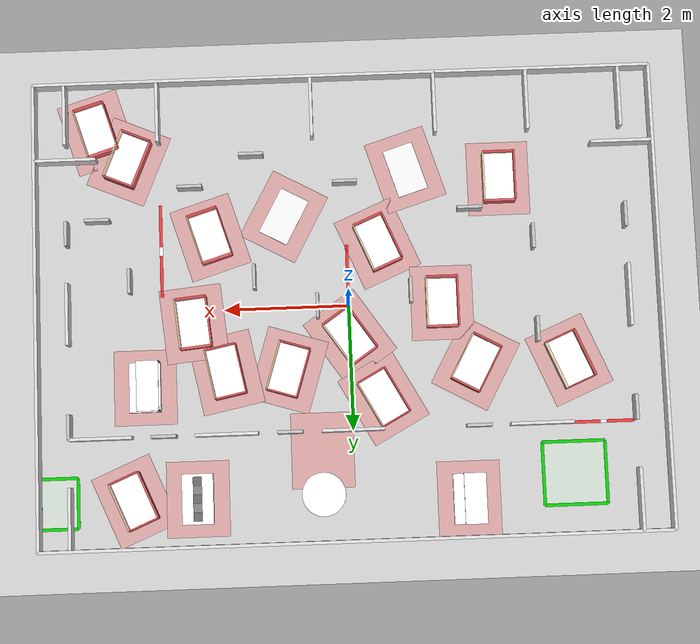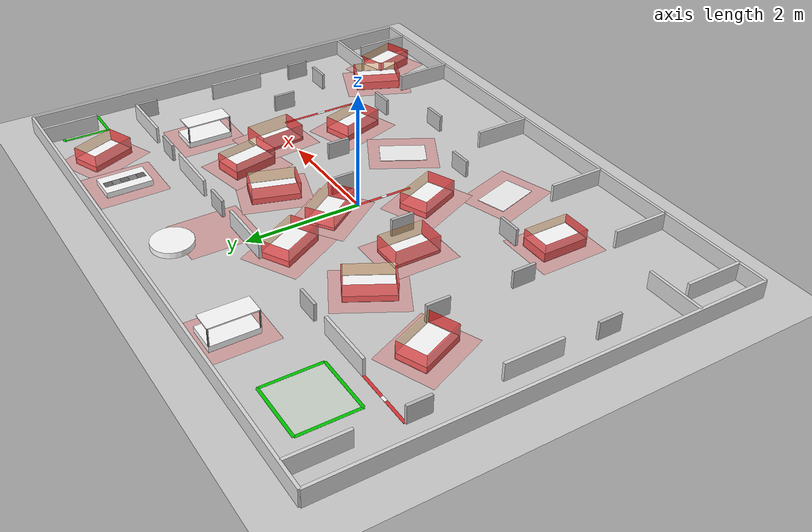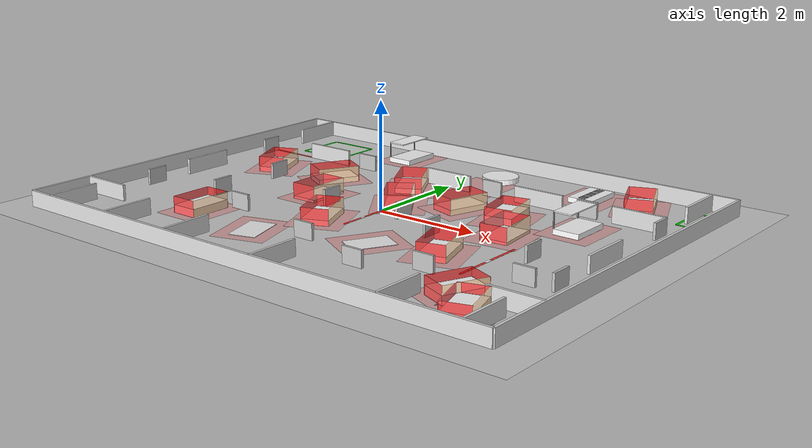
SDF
<?xml version="1.0" ?>
<sdf version="1.6">
  <world name="atwork_2025_world">
    <physics name="1ms" type="ignored">
      <max_step_size>0.001</max_step_size>
      <real_time_factor>1.0</real_time_factor>
    </physics>
    <plugin
      filename="gz-sim-physics-system"
      name="gz::sim::systems::Physics">
    </plugin>
    <plugin
      filename="gz-sim-user-commands-system"
      name="gz::sim::systems::UserCommands">
    </plugin>
    <plugin
      filename="gz-sim-scene-broadcaster-system"
      name="gz::sim::systems::SceneBroadcaster">
    </plugin>
    <plugin
      filename="gz-sim-sensors-system"
      name="gz::sim::systems::Sensors">
      <render_engine>ogre</render_engine>
    </plugin>
    <plugin
      filename="gz-sim-imu-system"
      name="gz::sim::systems::Imu">
    </plugin>

    <include>
      <uri>https://fuel.gazebosim.org/1.0/OpenRobotics/models/Sun</uri>
    </include>
    <include>
      <uri>https://fuel.gazebosim.org/1.0/OpenRobotics/models/Ground Plane</uri>
    </include>

    <!-- RoboCup @Work World Cup 2025 – Salvador                      -->
    <!-- Arena: 10 m × 7.5 m   Origin at arena centre                -->
    <!-- Table height distribution (per rulebook 3.2.5):              -->
    <!--   0cm:  WS05, WS10                                           -->
    <!--   5cm:  WS03, WS07, WS13                                     -->
    <!--   10cm: WS01, WS02, WS06, WS08, WS11, WS14, WS15            -->
    <!--   15cm: WS04, WS09, WS12, WS16                               -->

    <!-- ======================== Perimeter Walls =================== -->
    <model name="arena_walls">
      <static>true</static>
      <link name="link">
        <!-- North wall -->
        <collision name="wall_n">
          <pose>0 3.75 0.15 0 0 0</pose>
          <geometry><box><size>10.0 0.05 0.30</size></box></geometry>
        </collision>
        <visual name="wall_n_v">
          <pose>0 3.75 0.15 0 0 0</pose>
          <geometry><box><size>10.0 0.05 0.30</size></box></geometry>
          <material><ambient>0.85 0.85 0.85 1</ambient><diffuse>0.85 0.85 0.85 1</diffuse></material>
        </visual>
        <!-- South wall -->
        <collision name="wall_s">
          <pose>0 -3.75 0.15 0 0 0</pose>
          <geometry><box><size>10.0 0.05 0.30</size></box></geometry>
        </collision>
        <visual name="wall_s_v">
          <pose>0 -3.75 0.15 0 0 0</pose>
          <geometry><box><size>10.0 0.05 0.30</size></box></geometry>
          <material><ambient>0.85 0.85 0.85 1</ambient><diffuse>0.85 0.85 0.85 1</diffuse></material>
        </visual>
        <!-- West wall -->
        <collision name="wall_w">
          <pose>-5.0 0 0.15 0 0 0</pose>
          <geometry><box><size>0.05 7.5 0.30</size></box></geometry>
        </collision>
        <visual name="wall_w_v">
          <pose>-5.0 0 0.15 0 0 0</pose>
          <geometry><box><size>0.05 7.5 0.30</size></box></geometry>
          <material><ambient>0.85 0.85 0.85 1</ambient><diffuse>0.85 0.85 0.85 1</diffuse></material>
        </visual>
        <!-- East wall -->
        <collision name="wall_e">
          <pose>5.0 0 0.15 0 0 0</pose>
          <geometry><box><size>0.05 7.5 0.30</size></box></geometry>
        </collision>
        <visual name="wall_e_v">
          <pose>5.0 0 0.15 0 0 0</pose>
          <geometry><box><size>0.05 7.5 0.30</size></box></geometry>
          <material><ambient>0.85 0.85 0.85 1</ambient><diffuse>0.85 0.85 0.85 1</diffuse></material>
        </visual>
      </link>
    </model>

    <!-- ======================== START Area ======================== -->
    <!-- Green marking tape boundary (rulebook 3.2.4, 3.2.9) -->
    <model name="start_area">
      <static>true</static>
      <pose>-3.5 2.8 0.001 0 0 0</pose>
      <link name="link">
        <visual name="floor">
          <geometry><plane><normal>0 0 1</normal><size>1.0 1.0</size></plane></geometry>
          <material><ambient>0.85 0.95 0.85 0.4</ambient><diffuse>0.85 0.95 0.85 0.4</diffuse></material>
        </visual>
        <!-- Green marking tape lines around START -->
        <visual name="tape_n"><pose>0 0.5 0.001 0 0 0</pose>
          <geometry><box><size>1.0 0.05 0.002</size></box></geometry>
          <material><ambient>0 0.8 0 1</ambient><diffuse>0 0.8 0 1</diffuse></material></visual>
        <visual name="tape_s"><pose>0 -0.5 0.001 0 0 0</pose>
          <geometry><box><size>1.0 0.05 0.002</size></box></geometry>
          <material><ambient>0 0.8 0 1</ambient><diffuse>0 0.8 0 1</diffuse></material></visual>
        <visual name="tape_w"><pose>-0.5 0 0.001 0 0 0</pose>
          <geometry><box><size>0.05 1.0 0.002</size></box></geometry>
          <material><ambient>0 0.8 0 1</ambient><diffuse>0 0.8 0 1</diffuse></material></visual>
        <visual name="tape_e"><pose>0.5 0 0.001 0 0 0</pose>
          <geometry><box><size>0.05 1.0 0.002</size></box></geometry>
          <material><ambient>0 0.8 0 1</ambient><diffuse>0 0.8 0 1</diffuse></material></visual>
      </link>
    </model>

    <!-- ======================== GOAL/FINISH Area ================== -->
    <model name="goal_area">
      <static>true</static>
      <pose>4.7 3.0 0.001 0 0 0</pose>
      <link name="link">
        <visual name="floor">
          <geometry><plane><normal>0 0 1</normal><size>0.6 0.8</size></plane></geometry>
          <material><ambient>0.85 0.95 0.85 0.4</ambient><diffuse>0.85 0.95 0.85 0.4</diffuse></material>
        </visual>
        <visual name="tape_n"><pose>0 0.4 0.001 0 0 0</pose>
          <geometry><box><size>0.6 0.05 0.002</size></box></geometry>
          <material><ambient>0 0.8 0 1</ambient><diffuse>0 0.8 0 1</diffuse></material></visual>
        <visual name="tape_s"><pose>0 -0.4 0.001 0 0 0</pose>
          <geometry><box><size>0.6 0.05 0.002</size></box></geometry>
          <material><ambient>0 0.8 0 1</ambient><diffuse>0 0.8 0 1</diffuse></material></visual>
        <visual name="tape_w"><pose>-0.3 0 0.001 0 0 0</pose>
          <geometry><box><size>0.05 0.8 0.002</size></box></geometry>
          <material><ambient>0 0.8 0 1</ambient><diffuse>0 0.8 0 1</diffuse></material></visual>
        <visual name="tape_e"><pose>0.3 0 0.001 0 0 0</pose>
          <geometry><box><size>0.05 0.8 0.002</size></box></geometry>
          <material><ambient>0 0.8 0 1</ambient><diffuse>0 0.8 0 1</diffuse></material></visual>
      </link>
    </model>

    <!-- =================== Red/White Virtual Wall Tape ============ -->
    <!-- Per rulebook 3.2.2, 3.2.4: Virtual walls marked with
         red/white tape. Touching = Major Collision. -->
    <model name="virtual_walls_tape">
      <static>true</static>
      <link name="link">
        <!-- Virtual wall segment near upper-left corridor -->
        <visual name="vw1"><pose>-4.0 2.0 0.001 0 0 0</pose>
          <geometry><box><size>1.0 0.05 0.002</size></box></geometry>
          <material><ambient>0.9 0.2 0.2 1</ambient><diffuse>0.9 0.2 0.2 1</diffuse></material></visual>
        <visual name="vw1_w"><pose>-4.0 2.0 0.003 0 0 0</pose>
          <geometry><box><size>0.1 0.05 0.002</size></box></geometry>
          <material><ambient>1 1 1 1</ambient><diffuse>1 1 1 1</diffuse></material></visual>

        <!-- Virtual wall segment near lower-right area -->
        <visual name="vw2"><pose>3.0 -1.0 0.001 0 0 0</pose>
          <geometry><box><size>0.05 1.5 0.002</size></box></geometry>
          <material><ambient>0.9 0.2 0.2 1</ambient><diffuse>0.9 0.2 0.2 1</diffuse></material></visual>
        <visual name="vw2_w"><pose>3.0 -1.0 0.003 0 0 0</pose>
          <geometry><box><size>0.05 0.15 0.002</size></box></geometry>
          <material><ambient>1 1 1 1</ambient><diffuse>1 1 1 1</diffuse></material></visual>

        <!-- Virtual wall near centre corridor -->
        <visual name="vw3"><pose>0.0 -0.5 0.001 0 0 0</pose>
          <geometry><box><size>0.05 1.0 0.002</size></box></geometry>
          <material><ambient>0.9 0.2 0.2 1</ambient><diffuse>0.9 0.2 0.2 1</diffuse></material></visual>
        <visual name="vw3_w"><pose>0.0 -0.5 0.003 0 0 0</pose>
          <geometry><box><size>0.05 0.1 0.002</size></box></geometry>
          <material><ambient>1 1 1 1</ambient><diffuse>1 1 1 1</diffuse></material></visual>
      </link>
    </model>

    <!-- ======================== Shelves =========================== -->
    <!-- SH01 – upper-left, near START -->
    <include>
      <name>SH01</name>
      <uri>model://shelf</uri>
      <pose>-1.8 3.15 0.0 0 0 0</pose>
    </include>

    <!-- SH02 – right side, mid-height -->
    <include>
      <name>SH02</name>
      <uri>model://shelf</uri>
      <pose>3.3 1.2 0.0 0 0 0</pose>
    </include>

    <!-- ======================== Rotating Table ==================== -->
    <!-- RT01 (rulebook 3.2.7: height 8-12cm, diameter 50-100cm,
         WHITE surface, rotating speed 5-20 cm/s) -->
    <model name="RT01">
      <static>true</static>
      <pose>0.5 3.0 0.0 0 0 0</pose>
      <link name="link">
        <collision name="collision">
          <pose>0 0 0.05 0 0 0</pose>
          <geometry><cylinder><radius>0.35</radius><length>0.10</length></cylinder></geometry>
        </collision>
        <visual name="visual">
          <pose>0 0 0.05 0 0 0</pose>
          <geometry><cylinder><radius>0.35</radius><length>0.10</length></cylinder></geometry>
          <material><ambient>1.0 1.0 1.0 1</ambient><diffuse>1.0 1.0 1.0 1</diffuse></material>
        </visual>
      </link>
    </model>

    <!-- ======================== Precise Placement ================= -->
    <!-- PP01 (rulebook 3.2.8: based on standard 10cm table with
         cavity tiles 140mm x 140mm, max 5 cavities) -->
    <model name="PP01">
      <static>true</static>
      <pose>2.5 3.0 0.0 0 0 0</pose>
      <link name="link">
        <!-- Base: standard 10cm table -->
        <collision name="base_col">
          <pose>0 0 0.05 0 0 0</pose>
          <geometry><box><size>0.5 0.8 0.1</size></box></geometry>
        </collision>
        <visual name="base_vis">
          <pose>0 0 0.05 0 0 0</pose>
          <geometry><box><size>0.5 0.8 0.1</size></box></geometry>
          <material><ambient>1 1 1 1</ambient><diffuse>1 1 1 1</diffuse></material>
        </visual>
        <!-- Cavity tile slots (5 tiles, 140mm each, 50mm borders) -->
        <visual name="cavity_1"><pose>0.0 -0.28 0.101 0 0 0</pose>
          <geometry><box><size>0.14 0.14 0.002</size></box></geometry>
          <material><ambient>0.4 0.4 0.4 1</ambient><diffuse>0.4 0.4 0.4 1</diffuse></material></visual>
        <visual name="cavity_2"><pose>0.0 -0.14 0.101 0 0 0</pose>
          <geometry><box><size>0.14 0.14 0.002</size></box></geometry>
          <material><ambient>0.5 0.5 0.5 1</ambient><diffuse>0.5 0.5 0.5 1</diffuse></material></visual>
        <visual name="cavity_3"><pose>0.0 0.0 0.101 0 0 0</pose>
          <geometry><box><size>0.14 0.14 0.002</size></box></geometry>
          <material><ambient>0.4 0.4 0.4 1</ambient><diffuse>0.4 0.4 0.4 1</diffuse></material></visual>
        <visual name="cavity_4"><pose>0.0 0.14 0.101 0 0 0</pose>
          <geometry><box><size>0.14 0.14 0.002</size></box></geometry>
          <material><ambient>0.5 0.5 0.5 1</ambient><diffuse>0.5 0.5 0.5 1</diffuse></material></visual>
        <visual name="cavity_5"><pose>0.0 0.28 0.101 0 0 0</pose>
          <geometry><box><size>0.14 0.14 0.002</size></box></geometry>
          <material><ambient>0.4 0.4 0.4 1</ambient><diffuse>0.4 0.4 0.4 1</diffuse></material></visual>
      </link>
    </model>

    <!-- ======================== Workstations ====================== -->
    <!-- Heights: 0cm=WS05,WS10  5cm=WS03,WS07,WS13
                  10cm=WS01,WS02,WS06,WS08,WS11,WS14,WS15
                  15cm=WS04,WS09,WS12,WS16 -->

    <!-- 10cm tables -->
    <include><name>WS01</name><uri>model://table_10cm</uri>
      <pose>-2.0 1.0 0.05 0 0 -0.50</pose></include>
    <include><name>WS02</name><uri>model://table_10cm</uri>
      <pose>-0.5 1.5 0.05 0 0 0.50</pose></include>
    <include><name>WS06</name><uri>model://table_10cm</uri>
      <pose>-0.5 -1.0 0.05 0 0 0.40</pose></include>
    <include><name>WS08</name><uri>model://table_10cm</uri>
      <pose>1.0 1.0 0.05 0 0 -0.30</pose></include>
    <include><name>WS11</name><uri>model://table_10cm</uri>
      <pose>2.2 -1.2 0.05 0 0 0.30</pose></include>
    <include><name>WS14</name><uri>model://table_10cm</uri>
      <pose>3.5 3.0 0.05 0 0 0.40</pose></include>
    <include><name>WS15</name><uri>model://table_10cm</uri>
      <pose>-3.5 1.0 0.05 0 0 0.40</pose></include>

    <!-- 5cm tables -->
    <include><name>WS03</name><uri>model://table_05cm</uri>
      <pose>-1.5 0.0 0.025 0 0 0.0</pose></include>
    <include><name>WS07</name><uri>model://table_05cm</uri>
      <pose>0.0 0.5 0.025 0 0 0.60</pose></include>
    <include><name>WS13</name><uri>model://table_05cm</uri>
      <pose>2.5 0.2 0.025 0 0 0.10</pose></include>

    <!-- 15cm tables -->
    <include><name>WS04</name><uri>model://table_15cm</uri>
      <pose>-2.5 -2.0 0.075 0 0 0.0</pose></include>
    <include><name>WS09</name><uri>model://table_15cm</uri>
      <pose>2.0 1.0 0.075 0 0 0.20</pose></include>
    <include><name>WS12</name><uri>model://table_15cm</uri>
      <pose>3.5 -2.5 0.075 0 0 -0.40</pose></include>
    <include><name>WS16</name><uri>model://table_15cm</uri>
      <pose>4.0 -3.0 0.075 0 0 0.30</pose></include>

    <!-- 0cm tables (floor-level per rulebook 3.2.5) -->
    <include><name>WS05</name><uri>model://table_00cm</uri>
      <pose>-1.0 -2.2 0.0 0 0 0.30</pose></include>
    <include><name>WS10</name><uri>model://table_00cm</uri>
      <pose>1.0 -1.5 0.0 0 0 -0.50</pose></include>

    <!-- =================== Service Area Markings ================== -->
    <!-- Semi-transparent red floor patches showing manipulation zones -->
    <model name="service_areas">
      <static>true</static>
      <link name="link">
        <visual name="sa_ws01"><pose>-2.0 1.0 0.002 0 0 -0.50</pose>
          <geometry><plane><normal>0 0 1</normal><size>1.0 1.2</size></plane></geometry>
          <material><ambient>1 0 0 0.15</ambient><diffuse>1 0 0 0.15</diffuse></material></visual>
        <visual name="sa_ws02"><pose>-0.5 1.5 0.002 0 0 0.50</pose>
          <geometry><plane><normal>0 0 1</normal><size>1.0 1.2</size></plane></geometry>
          <material><ambient>1 0 0 0.15</ambient><diffuse>1 0 0 0.15</diffuse></material></visual>
        <visual name="sa_ws03"><pose>-1.5 0.0 0.002 0 0 0.0</pose>
          <geometry><plane><normal>0 0 1</normal><size>1.0 1.2</size></plane></geometry>
          <material><ambient>1 0 0 0.15</ambient><diffuse>1 0 0 0.15</diffuse></material></visual>
        <visual name="sa_ws04"><pose>-2.5 -2.0 0.002 0 0 0.0</pose>
          <geometry><plane><normal>0 0 1</normal><size>1.0 1.2</size></plane></geometry>
          <material><ambient>1 0 0 0.15</ambient><diffuse>1 0 0 0.15</diffuse></material></visual>
        <visual name="sa_ws05"><pose>-1.0 -2.2 0.002 0 0 0.30</pose>
          <geometry><plane><normal>0 0 1</normal><size>1.0 1.2</size></plane></geometry>
          <material><ambient>1 0 0 0.15</ambient><diffuse>1 0 0 0.15</diffuse></material></visual>
        <visual name="sa_ws06"><pose>-0.5 -1.0 0.002 0 0 0.40</pose>
          <geometry><plane><normal>0 0 1</normal><size>1.0 1.2</size></plane></geometry>
          <material><ambient>1 0 0 0.15</ambient><diffuse>1 0 0 0.15</diffuse></material></visual>
        <visual name="sa_ws07"><pose>0.0 0.5 0.002 0 0 0.60</pose>
          <geometry><plane><normal>0 0 1</normal><size>1.0 1.2</size></plane></geometry>
          <material><ambient>1 0 0 0.15</ambient><diffuse>1 0 0 0.15</diffuse></material></visual>
        <visual name="sa_ws08"><pose>1.0 1.0 0.002 0 0 -0.30</pose>
          <geometry><plane><normal>0 0 1</normal><size>1.0 1.2</size></plane></geometry>
          <material><ambient>1 0 0 0.15</ambient><diffuse>1 0 0 0.15</diffuse></material></visual>
        <visual name="sa_ws09"><pose>2.0 1.0 0.002 0 0 0.20</pose>
          <geometry><plane><normal>0 0 1</normal><size>1.0 1.2</size></plane></geometry>
          <material><ambient>1 0 0 0.15</ambient><diffuse>1 0 0 0.15</diffuse></material></visual>
        <visual name="sa_ws10"><pose>1.0 -1.5 0.002 0 0 -0.50</pose>
          <geometry><plane><normal>0 0 1</normal><size>1.0 1.2</size></plane></geometry>
          <material><ambient>1 0 0 0.15</ambient><diffuse>1 0 0 0.15</diffuse></material></visual>
        <visual name="sa_ws11"><pose>2.2 -1.2 0.002 0 0 0.30</pose>
          <geometry><plane><normal>0 0 1</normal><size>1.0 1.2</size></plane></geometry>
          <material><ambient>1 0 0 0.15</ambient><diffuse>1 0 0 0.15</diffuse></material></visual>
        <visual name="sa_ws12"><pose>3.5 -2.5 0.002 0 0 -0.40</pose>
          <geometry><plane><normal>0 0 1</normal><size>1.0 1.2</size></plane></geometry>
          <material><ambient>1 0 0 0.15</ambient><diffuse>1 0 0 0.15</diffuse></material></visual>
        <visual name="sa_ws13"><pose>2.5 0.2 0.002 0 0 0.10</pose>
          <geometry><plane><normal>0 0 1</normal><size>1.0 1.2</size></plane></geometry>
          <material><ambient>1 0 0 0.15</ambient><diffuse>1 0 0 0.15</diffuse></material></visual>
        <visual name="sa_ws14"><pose>3.5 3.0 0.002 0 0 0.40</pose>
          <geometry><plane><normal>0 0 1</normal><size>1.0 1.2</size></plane></geometry>
          <material><ambient>1 0 0 0.15</ambient><diffuse>1 0 0 0.15</diffuse></material></visual>
        <visual name="sa_ws15"><pose>-3.5 1.0 0.002 0 0 0.40</pose>
          <geometry><plane><normal>0 0 1</normal><size>1.0 1.2</size></plane></geometry>
          <material><ambient>1 0 0 0.15</ambient><diffuse>1 0 0 0.15</diffuse></material></visual>
        <visual name="sa_ws16"><pose>4.0 -3.0 0.002 0 0 0.30</pose>
          <geometry><plane><normal>0 0 1</normal><size>1.0 1.2</size></plane></geometry>
          <material><ambient>1 0 0 0.15</ambient><diffuse>1 0 0 0.15</diffuse></material></visual>
        <visual name="sa_sh01"><pose>-1.8 3.15 0.002 0 0 0.0</pose>
          <geometry><plane><normal>0 0 1</normal><size>1.0 1.2</size></plane></geometry>
          <material><ambient>1 0 0 0.15</ambient><diffuse>1 0 0 0.15</diffuse></material></visual>
        <visual name="sa_sh02"><pose>3.3 1.2 0.002 0 0 0.0</pose>
          <geometry><plane><normal>0 0 1</normal><size>1.0 1.2</size></plane></geometry>
          <material><ambient>1 0 0 0.15</ambient><diffuse>1 0 0 0.15</diffuse></material></visual>
        <visual name="sa_rt01"><pose>0.5 2.3 0.002 0 0 0.0</pose>
          <geometry><plane><normal>0 0 1</normal><size>1.0 1.2</size></plane></geometry>
          <material><ambient>1 0 0 0.15</ambient><diffuse>1 0 0 0.15</diffuse></material></visual>
        <visual name="sa_pp01"><pose>2.5 3.0 0.002 0 0 0.0</pose>
          <geometry><plane><normal>0 0 1</normal><size>1.0 1.2</size></plane></geometry>
          <material><ambient>1 0 0 0.15</ambient><diffuse>1 0 0 0.15</diffuse></material></visual>
      </link>
    </model>

    <!-- ======================= Interior Walls ===================== -->
    <!-- 16 × Wall (100 cm) + 18 × Wall (40 cm)                      -->
    <!-- Walls height: 30cm (rulebook: 20-40cm, white with aluminium) -->
    <model name="interior_walls">
      <static>true</static>
      <link name="link">

        <!-- === 100 cm walls (×16) === -->
        <!-- Left corridor walls (N-S) -->
        <collision name="w100_01"><pose>-4.5 3.25 0.15 0 0 0</pose>
          <geometry><box><size>0.05 1.0 0.30</size></box></geometry></collision>
        <visual name="w100_01_v"><pose>-4.5 3.25 0.15 0 0 0</pose>
          <geometry><box><size>0.05 1.0 0.30</size></box></geometry>
          <material><ambient>0.85 0.85 0.85 1</ambient><diffuse>0.85 0.85 0.85 1</diffuse></material></visual>

        <collision name="w100_02"><pose>-4.5 0.0 0.15 0 0 0</pose>
          <geometry><box><size>0.05 1.0 0.30</size></box></geometry></collision>
        <visual name="w100_02_v"><pose>-4.5 0.0 0.15 0 0 0</pose>
          <geometry><box><size>0.05 1.0 0.30</size></box></geometry>
          <material><ambient>0.85 0.85 0.85 1</ambient><diffuse>0.85 0.85 0.85 1</diffuse></material></visual>

        <collision name="w100_03"><pose>-4.5 -3.25 0.15 0 0 0</pose>
          <geometry><box><size>0.05 1.0 0.30</size></box></geometry></collision>
        <visual name="w100_03_v"><pose>-4.5 -3.25 0.15 0 0 0</pose>
          <geometry><box><size>0.05 1.0 0.30</size></box></geometry>
          <material><ambient>0.85 0.85 0.85 1</ambient><diffuse>0.85 0.85 0.85 1</diffuse></material></visual>

        <!-- Right corridor walls (N-S) -->
        <collision name="w100_04"><pose>4.5 3.25 0.15 0 0 0</pose>
          <geometry><box><size>0.05 1.0 0.30</size></box></geometry></collision>
        <visual name="w100_04_v"><pose>4.5 3.25 0.15 0 0 0</pose>
          <geometry><box><size>0.05 1.0 0.30</size></box></geometry>
          <material><ambient>0.85 0.85 0.85 1</ambient><diffuse>0.85 0.85 0.85 1</diffuse></material></visual>

        <collision name="w100_05"><pose>4.5 0.0 0.15 0 0 0</pose>
          <geometry><box><size>0.05 1.0 0.30</size></box></geometry></collision>
        <visual name="w100_05_v"><pose>4.5 0.0 0.15 0 0 0</pose>
          <geometry><box><size>0.05 1.0 0.30</size></box></geometry>
          <material><ambient>0.85 0.85 0.85 1</ambient><diffuse>0.85 0.85 0.85 1</diffuse></material></visual>

        <collision name="w100_06"><pose>4.5 -3.25 0.15 0 0 0</pose>
          <geometry><box><size>0.05 1.0 0.30</size></box></geometry></collision>
        <visual name="w100_06_v"><pose>4.5 -3.25 0.15 0 0 0</pose>
          <geometry><box><size>0.05 1.0 0.30</size></box></geometry>
          <material><ambient>0.85 0.85 0.85 1</ambient><diffuse>0.85 0.85 0.85 1</diffuse></material></visual>

        <!-- Bottom cross-walls (E-W) -->
        <collision name="w100_07"><pose>-4.5 -2.5 0.15 0 0 0</pose>
          <geometry><box><size>1.0 0.05 0.30</size></box></geometry></collision>
        <visual name="w100_07_v"><pose>-4.5 -2.5 0.15 0 0 0</pose>
          <geometry><box><size>1.0 0.05 0.30</size></box></geometry>
          <material><ambient>0.85 0.85 0.85 1</ambient><diffuse>0.85 0.85 0.85 1</diffuse></material></visual>

        <collision name="w100_08"><pose>4.5 -2.5 0.15 0 0 0</pose>
          <geometry><box><size>1.0 0.05 0.30</size></box></geometry></collision>
        <visual name="w100_08_v"><pose>4.5 -2.5 0.15 0 0 0</pose>
          <geometry><box><size>1.0 0.05 0.30</size></box></geometry>
          <material><ambient>0.85 0.85 0.85 1</ambient><diffuse>0.85 0.85 0.85 1</diffuse></material></visual>

        <!-- Interior dividers (N-S) -->
        <collision name="w100_09"><pose>-3.0 -3.25 0.15 0 0 0</pose>
          <geometry><box><size>0.05 1.0 0.30</size></box></geometry></collision>
        <visual name="w100_09_v"><pose>-3.0 -3.25 0.15 0 0 0</pose>
          <geometry><box><size>0.05 1.0 0.30</size></box></geometry>
          <material><ambient>0.85 0.85 0.85 1</ambient><diffuse>0.85 0.85 0.85 1</diffuse></material></visual>

        <collision name="w100_10"><pose>-1.5 -3.25 0.15 0 0 0</pose>
          <geometry><box><size>0.05 1.0 0.30</size></box></geometry></collision>
        <visual name="w100_10_v"><pose>-1.5 -3.25 0.15 0 0 0</pose>
          <geometry><box><size>0.05 1.0 0.30</size></box></geometry>
          <material><ambient>0.85 0.85 0.85 1</ambient><diffuse>0.85 0.85 0.85 1</diffuse></material></visual>

        <collision name="w100_11"><pose>0.5 -3.25 0.15 0 0 0</pose>
          <geometry><box><size>0.05 1.0 0.30</size></box></geometry></collision>
        <visual name="w100_11_v"><pose>0.5 -3.25 0.15 0 0 0</pose>
          <geometry><box><size>0.05 1.0 0.30</size></box></geometry>
          <material><ambient>0.85 0.85 0.85 1</ambient><diffuse>0.85 0.85 0.85 1</diffuse></material></visual>

        <collision name="w100_12"><pose>3.0 -3.25 0.15 0 0 0</pose>
          <geometry><box><size>0.05 1.0 0.30</size></box></geometry></collision>
        <visual name="w100_12_v"><pose>3.0 -3.25 0.15 0 0 0</pose>
          <geometry><box><size>0.05 1.0 0.30</size></box></geometry>
          <material><ambient>0.85 0.85 0.85 1</ambient><diffuse>0.85 0.85 0.85 1</diffuse></material></visual>

        <!-- Interior horizontal dividers (E-W) -->
        <collision name="w100_13"><pose>-3.0 2.0 0.15 0 0 0</pose>
          <geometry><box><size>1.0 0.05 0.30</size></box></geometry></collision>
        <visual name="w100_13_v"><pose>-3.0 2.0 0.15 0 0 0</pose>
          <geometry><box><size>1.0 0.05 0.30</size></box></geometry>
          <material><ambient>0.85 0.85 0.85 1</ambient><diffuse>0.85 0.85 0.85 1</diffuse></material></visual>

        <collision name="w100_14"><pose>0.0 2.0 0.15 0 0 0</pose>
          <geometry><box><size>1.0 0.05 0.30</size></box></geometry></collision>
        <visual name="w100_14_v"><pose>0.0 2.0 0.15 0 0 0</pose>
          <geometry><box><size>1.0 0.05 0.30</size></box></geometry>
          <material><ambient>0.85 0.85 0.85 1</ambient><diffuse>0.85 0.85 0.85 1</diffuse></material></visual>

        <collision name="w100_15"><pose>2.0 2.0 0.15 0 0 0</pose>
          <geometry><box><size>1.0 0.05 0.30</size></box></geometry></collision>
        <visual name="w100_15_v"><pose>2.0 2.0 0.15 0 0 0</pose>
          <geometry><box><size>1.0 0.05 0.30</size></box></geometry>
          <material><ambient>0.85 0.85 0.85 1</ambient><diffuse>0.85 0.85 0.85 1</diffuse></material></visual>

        <collision name="w100_16"><pose>4.0 2.0 0.15 0 0 0</pose>
          <geometry><box><size>1.0 0.05 0.30</size></box></geometry></collision>
        <visual name="w100_16_v"><pose>4.0 2.0 0.15 0 0 0</pose>
          <geometry><box><size>1.0 0.05 0.30</size></box></geometry>
          <material><ambient>0.85 0.85 0.85 1</ambient><diffuse>0.85 0.85 0.85 1</diffuse></material></visual>

        <!-- === 40 cm walls (×18) === -->
        <collision name="w40_01"><pose>-4.5 1.8 0.15 0 0 0</pose>
          <geometry><box><size>0.05 0.4 0.30</size></box></geometry></collision>
        <visual name="w40_01_v"><pose>-4.5 1.8 0.15 0 0 0</pose>
          <geometry><box><size>0.05 0.4 0.30</size></box></geometry>
          <material><ambient>0.75 0.75 0.75 1</ambient><diffuse>0.75 0.75 0.75 1</diffuse></material></visual>

        <collision name="w40_02"><pose>-4.5 -1.3 0.15 0 0 0</pose>
          <geometry><box><size>0.05 0.4 0.30</size></box></geometry></collision>
        <visual name="w40_02_v"><pose>-4.5 -1.3 0.15 0 0 0</pose>
          <geometry><box><size>0.05 0.4 0.30</size></box></geometry>
          <material><ambient>0.75 0.75 0.75 1</ambient><diffuse>0.75 0.75 0.75 1</diffuse></material></visual>

        <collision name="w40_03"><pose>4.5 1.8 0.15 0 0 0</pose>
          <geometry><box><size>0.05 0.4 0.30</size></box></geometry></collision>
        <visual name="w40_03_v"><pose>4.5 1.8 0.15 0 0 0</pose>
          <geometry><box><size>0.05 0.4 0.30</size></box></geometry>
          <material><ambient>0.75 0.75 0.75 1</ambient><diffuse>0.75 0.75 0.75 1</diffuse></material></visual>

        <collision name="w40_04"><pose>4.5 -1.3 0.15 0 0 0</pose>
          <geometry><box><size>0.05 0.4 0.30</size></box></geometry></collision>
        <visual name="w40_04_v"><pose>4.5 -1.3 0.15 0 0 0</pose>
          <geometry><box><size>0.05 0.4 0.30</size></box></geometry>
          <material><ambient>0.75 0.75 0.75 1</ambient><diffuse>0.75 0.75 0.75 1</diffuse></material></visual>

        <collision name="w40_05"><pose>-2.0 2.0 0.15 0 0 0</pose>
          <geometry><box><size>0.4 0.05 0.30</size></box></geometry></collision>
        <visual name="w40_05_v"><pose>-2.0 2.0 0.15 0 0 0</pose>
          <geometry><box><size>0.4 0.05 0.30</size></box></geometry>
          <material><ambient>0.75 0.75 0.75 1</ambient><diffuse>0.75 0.75 0.75 1</diffuse></material></visual>

        <collision name="w40_06"><pose>1.0 2.0 0.15 0 0 0</pose>
          <geometry><box><size>0.4 0.05 0.30</size></box></geometry></collision>
        <visual name="w40_06_v"><pose>1.0 2.0 0.15 0 0 0</pose>
          <geometry><box><size>0.4 0.05 0.30</size></box></geometry>
          <material><ambient>0.75 0.75 0.75 1</ambient><diffuse>0.75 0.75 0.75 1</diffuse></material></visual>

        <collision name="w40_07"><pose>3.0 2.0 0.15 0 0 0</pose>
          <geometry><box><size>0.4 0.05 0.30</size></box></geometry></collision>
        <visual name="w40_07_v"><pose>3.0 2.0 0.15 0 0 0</pose>
          <geometry><box><size>0.4 0.05 0.30</size></box></geometry>
          <material><ambient>0.75 0.75 0.75 1</ambient><diffuse>0.75 0.75 0.75 1</diffuse></material></visual>

        <collision name="w40_08"><pose>-3.0 0.5 0.15 0 0 0</pose>
          <geometry><box><size>0.05 0.4 0.30</size></box></geometry></collision>
        <visual name="w40_08_v"><pose>-3.0 0.5 0.15 0 0 0</pose>
          <geometry><box><size>0.05 0.4 0.30</size></box></geometry>
          <material><ambient>0.75 0.75 0.75 1</ambient><diffuse>0.75 0.75 0.75 1</diffuse></material></visual>

        <collision name="w40_09"><pose>-3.0 -1.0 0.15 0 0 0</pose>
          <geometry><box><size>0.05 0.4 0.30</size></box></geometry></collision>
        <visual name="w40_09_v"><pose>-3.0 -1.0 0.15 0 0 0</pose>
          <geometry><box><size>0.05 0.4 0.30</size></box></geometry>
          <material><ambient>0.75 0.75 0.75 1</ambient><diffuse>0.75 0.75 0.75 1</diffuse></material></visual>

        <collision name="w40_10"><pose>-1.0 -0.2 0.15 0 0 0</pose>
          <geometry><box><size>0.05 0.4 0.30</size></box></geometry></collision>
        <visual name="w40_10_v"><pose>-1.0 -0.2 0.15 0 0 0</pose>
          <geometry><box><size>0.05 0.4 0.30</size></box></geometry>
          <material><ambient>0.75 0.75 0.75 1</ambient><diffuse>0.75 0.75 0.75 1</diffuse></material></visual>

        <collision name="w40_11"><pose>0.5 0.0 0.15 0 0 0</pose>
          <geometry><box><size>0.05 0.4 0.30</size></box></geometry></collision>
        <visual name="w40_11_v"><pose>0.5 0.0 0.15 0 0 0</pose>
          <geometry><box><size>0.05 0.4 0.30</size></box></geometry>
          <material><ambient>0.75 0.75 0.75 1</ambient><diffuse>0.75 0.75 0.75 1</diffuse></material></visual>

        <collision name="w40_12"><pose>1.5 -0.5 0.15 0 0 0</pose>
          <geometry><box><size>0.05 0.4 0.30</size></box></geometry></collision>
        <visual name="w40_12_v"><pose>1.5 -0.5 0.15 0 0 0</pose>
          <geometry><box><size>0.05 0.4 0.30</size></box></geometry>
          <material><ambient>0.75 0.75 0.75 1</ambient><diffuse>0.75 0.75 0.75 1</diffuse></material></visual>

        <collision name="w40_13"><pose>3.5 -0.5 0.15 0 0 0</pose>
          <geometry><box><size>0.05 0.4 0.30</size></box></geometry></collision>
        <visual name="w40_13_v"><pose>3.5 -0.5 0.15 0 0 0</pose>
          <geometry><box><size>0.05 0.4 0.30</size></box></geometry>
          <material><ambient>0.75 0.75 0.75 1</ambient><diffuse>0.75 0.75 0.75 1</diffuse></material></visual>

        <collision name="w40_14"><pose>-2.0 -1.5 0.15 0 0 0</pose>
          <geometry><box><size>0.4 0.05 0.30</size></box></geometry></collision>
        <visual name="w40_14_v"><pose>-2.0 -1.5 0.15 0 0 0</pose>
          <geometry><box><size>0.4 0.05 0.30</size></box></geometry>
          <material><ambient>0.75 0.75 0.75 1</ambient><diffuse>0.75 0.75 0.75 1</diffuse></material></visual>

        <collision name="w40_15"><pose>0.0 -2.0 0.15 0 0 0</pose>
          <geometry><box><size>0.4 0.05 0.30</size></box></geometry></collision>
        <visual name="w40_15_v"><pose>0.0 -2.0 0.15 0 0 0</pose>
          <geometry><box><size>0.4 0.05 0.30</size></box></geometry>
          <material><ambient>0.75 0.75 0.75 1</ambient><diffuse>0.75 0.75 0.75 1</diffuse></material></visual>

        <collision name="w40_16"><pose>1.5 -2.5 0.15 0 0 0</pose>
          <geometry><box><size>0.4 0.05 0.30</size></box></geometry></collision>
        <visual name="w40_16_v"><pose>1.5 -2.5 0.15 0 0 0</pose>
          <geometry><box><size>0.4 0.05 0.30</size></box></geometry>
          <material><ambient>0.75 0.75 0.75 1</ambient><diffuse>0.75 0.75 0.75 1</diffuse></material></visual>

        <collision name="w40_17"><pose>2.5 -2.0 0.15 0 0 0</pose>
          <geometry><box><size>0.4 0.05 0.30</size></box></geometry></collision>
        <visual name="w40_17_v"><pose>2.5 -2.0 0.15 0 0 0</pose>
          <geometry><box><size>0.4 0.05 0.30</size></box></geometry>
          <material><ambient>0.75 0.75 0.75 1</ambient><diffuse>0.75 0.75 0.75 1</diffuse></material></visual>

        <collision name="w40_18"><pose>4.0 -1.5 0.15 0 0 0</pose>
          <geometry><box><size>0.4 0.05 0.30</size></box></geometry></collision>
        <visual name="w40_18_v"><pose>4.0 -1.5 0.15 0 0 0</pose>
          <geometry><box><size>0.4 0.05 0.30</size></box></geometry>
          <material><ambient>0.75 0.75 0.75 1</ambient><diffuse>0.75 0.75 0.75 1</diffuse></material></visual>

      </link>
    </model>

    <!-- ======================== LiDAR Barriers ==================== -->
    <!-- Three solid sides (back + left + right) make tables visible
         to LiDAR at Nav2 costmap level. Front is visual-only so the
         arm can reach in. Barrier height 30cm, matching wall spec. -->

    <!-- WS01 barrier (10cm table) -->
    <model name="WS01_barrier"><static>true</static>
      <pose>-2.0 1.0 0.0 0 0 -0.50</pose>
      <link name="link">
        <collision name="back"><pose>-0.25 0.0 0.15 0 0 0</pose><geometry><box><size>0.02 0.80 0.30</size></box></geometry></collision>
        <collision name="left"><pose>0.0 0.40 0.15 0 0 0</pose><geometry><box><size>0.50 0.02 0.30</size></box></geometry></collision>
        <collision name="right"><pose>0.0 -0.40 0.15 0 0 0</pose><geometry><box><size>0.50 0.02 0.30</size></box></geometry></collision>
        <visual name="back_v"><pose>-0.25 0.0 0.15 0 0 0</pose><geometry><box><size>0.02 0.80 0.30</size></box></geometry>
          <material><ambient>1 0 0 0.6</ambient><diffuse>1 0 0 0.6</diffuse></material></visual>
        <visual name="left_v"><pose>0.0 0.40 0.15 0 0 0</pose><geometry><box><size>0.50 0.02 0.30</size></box></geometry>
          <material><ambient>1 0 0 0.6</ambient><diffuse>1 0 0 0.6</diffuse></material></visual>
        <visual name="right_v"><pose>0.0 -0.40 0.15 0 0 0</pose><geometry><box><size>0.50 0.02 0.30</size></box></geometry>
          <material><ambient>1 0 0 0.6</ambient><diffuse>1 0 0 0.6</diffuse></material></visual>
        <visual name="front_v"><pose>0.25 0.0 0.15 0 0 0</pose><geometry><box><size>0.02 0.80 0.30</size></box></geometry>
          <material><ambient>1 0.5 0 0.3</ambient><diffuse>1 0.5 0 0.3</diffuse></material></visual>
      </link></model>

    <!-- WS02 barrier (10cm) -->
    <model name="WS02_barrier"><static>true</static>
      <pose>-0.5 1.5 0.0 0 0 0.50</pose>
      <link name="link">
        <collision name="back"><pose>-0.25 0.0 0.15 0 0 0</pose><geometry><box><size>0.02 0.80 0.30</size></box></geometry></collision>
        <collision name="left"><pose>0.0 0.40 0.15 0 0 0</pose><geometry><box><size>0.50 0.02 0.30</size></box></geometry></collision>
        <collision name="right"><pose>0.0 -0.40 0.15 0 0 0</pose><geometry><box><size>0.50 0.02 0.30</size></box></geometry></collision>
        <visual name="back_v"><pose>-0.25 0.0 0.15 0 0 0</pose><geometry><box><size>0.02 0.80 0.30</size></box></geometry>
          <material><ambient>1 0 0 0.6</ambient><diffuse>1 0 0 0.6</diffuse></material></visual>
        <visual name="left_v"><pose>0.0 0.40 0.15 0 0 0</pose><geometry><box><size>0.50 0.02 0.30</size></box></geometry>
          <material><ambient>1 0 0 0.6</ambient><diffuse>1 0 0 0.6</diffuse></material></visual>
        <visual name="right_v"><pose>0.0 -0.40 0.15 0 0 0</pose><geometry><box><size>0.50 0.02 0.30</size></box></geometry>
          <material><ambient>1 0 0 0.6</ambient><diffuse>1 0 0 0.6</diffuse></material></visual>
        <visual name="front_v"><pose>0.25 0.0 0.15 0 0 0</pose><geometry><box><size>0.02 0.80 0.30</size></box></geometry>
          <material><ambient>1 0.5 0 0.3</ambient><diffuse>1 0.5 0 0.3</diffuse></material></visual>
      </link></model>

    <!-- WS03 barrier (5cm) -->
    <model name="WS03_barrier"><static>true</static>
      <pose>-1.5 0.0 0.0 0 0 0.0</pose>
      <link name="link">
        <collision name="back"><pose>-0.25 0.0 0.15 0 0 0</pose><geometry><box><size>0.02 0.80 0.30</size></box></geometry></collision>
        <collision name="left"><pose>0.0 0.40 0.15 0 0 0</pose><geometry><box><size>0.50 0.02 0.30</size></box></geometry></collision>
        <collision name="right"><pose>0.0 -0.40 0.15 0 0 0</pose><geometry><box><size>0.50 0.02 0.30</size></box></geometry></collision>
        <visual name="back_v"><pose>-0.25 0.0 0.15 0 0 0</pose><geometry><box><size>0.02 0.80 0.30</size></box></geometry>
          <material><ambient>1 0 0 0.6</ambient><diffuse>1 0 0 0.6</diffuse></material></visual>
        <visual name="left_v"><pose>0.0 0.40 0.15 0 0 0</pose><geometry><box><size>0.50 0.02 0.30</size></box></geometry>
          <material><ambient>1 0 0 0.6</ambient><diffuse>1 0 0 0.6</diffuse></material></visual>
        <visual name="right_v"><pose>0.0 -0.40 0.15 0 0 0</pose><geometry><box><size>0.50 0.02 0.30</size></box></geometry>
          <material><ambient>1 0 0 0.6</ambient><diffuse>1 0 0 0.6</diffuse></material></visual>
        <visual name="front_v"><pose>0.25 0.0 0.15 0 0 0</pose><geometry><box><size>0.02 0.80 0.30</size></box></geometry>
          <material><ambient>1 0.5 0 0.3</ambient><diffuse>1 0.5 0 0.3</diffuse></material></visual>
      </link></model>

    <!-- WS04 barrier (15cm) -->
    <model name="WS04_barrier"><static>true</static>
      <pose>-2.5 -2.0 0.0 0 0 0.0</pose>
      <link name="link">
        <collision name="back"><pose>-0.25 0.0 0.15 0 0 0</pose><geometry><box><size>0.02 0.80 0.30</size></box></geometry></collision>
        <collision name="left"><pose>0.0 0.40 0.15 0 0 0</pose><geometry><box><size>0.50 0.02 0.30</size></box></geometry></collision>
        <collision name="right"><pose>0.0 -0.40 0.15 0 0 0</pose><geometry><box><size>0.50 0.02 0.30</size></box></geometry></collision>
        <visual name="back_v"><pose>-0.25 0.0 0.15 0 0 0</pose><geometry><box><size>0.02 0.80 0.30</size></box></geometry>
          <material><ambient>1 0 0 0.6</ambient><diffuse>1 0 0 0.6</diffuse></material></visual>
        <visual name="left_v"><pose>0.0 0.40 0.15 0 0 0</pose><geometry><box><size>0.50 0.02 0.30</size></box></geometry>
          <material><ambient>1 0 0 0.6</ambient><diffuse>1 0 0 0.6</diffuse></material></visual>
        <visual name="right_v"><pose>0.0 -0.40 0.15 0 0 0</pose><geometry><box><size>0.50 0.02 0.30</size></box></geometry>
          <material><ambient>1 0 0 0.6</ambient><diffuse>1 0 0 0.6</diffuse></material></visual>
        <visual name="front_v"><pose>0.25 0.0 0.15 0 0 0</pose><geometry><box><size>0.02 0.80 0.30</size></box></geometry>
          <material><ambient>1 0.5 0 0.3</ambient><diffuse>1 0.5 0 0.3</diffuse></material></visual>
      </link></model>

    <!-- WS06 barrier (10cm) -->
    <model name="WS06_barrier"><static>true</static>
      <pose>-0.5 -1.0 0.0 0 0 0.40</pose>
      <link name="link">
        <collision name="back"><pose>-0.25 0.0 0.15 0 0 0</pose><geometry><box><size>0.02 0.80 0.30</size></box></geometry></collision>
        <collision name="left"><pose>0.0 0.40 0.15 0 0 0</pose><geometry><box><size>0.50 0.02 0.30</size></box></geometry></collision>
        <collision name="right"><pose>0.0 -0.40 0.15 0 0 0</pose><geometry><box><size>0.50 0.02 0.30</size></box></geometry></collision>
        <visual name="back_v"><pose>-0.25 0.0 0.15 0 0 0</pose><geometry><box><size>0.02 0.80 0.30</size></box></geometry>
          <material><ambient>1 0 0 0.6</ambient><diffuse>1 0 0 0.6</diffuse></material></visual>
        <visual name="left_v"><pose>0.0 0.40 0.15 0 0 0</pose><geometry><box><size>0.50 0.02 0.30</size></box></geometry>
          <material><ambient>1 0 0 0.6</ambient><diffuse>1 0 0 0.6</diffuse></material></visual>
        <visual name="right_v"><pose>0.0 -0.40 0.15 0 0 0</pose><geometry><box><size>0.50 0.02 0.30</size></box></geometry>
          <material><ambient>1 0 0 0.6</ambient><diffuse>1 0 0 0.6</diffuse></material></visual>
        <visual name="front_v"><pose>0.25 0.0 0.15 0 0 0</pose><geometry><box><size>0.02 0.80 0.30</size></box></geometry>
          <material><ambient>1 0.5 0 0.3</ambient><diffuse>1 0.5 0 0.3</diffuse></material></visual>
      </link></model>

    <!-- WS07 barrier (5cm) -->
    <model name="WS07_barrier"><static>true</static>
      <pose>0.0 0.5 0.0 0 0 0.60</pose>
      <link name="link">
        <collision name="back"><pose>-0.25 0.0 0.15 0 0 0</pose><geometry><box><size>0.02 0.80 0.30</size></box></geometry></collision>
        <collision name="left"><pose>0.0 0.40 0.15 0 0 0</pose><geometry><box><size>0.50 0.02 0.30</size></box></geometry></collision>
        <collision name="right"><pose>0.0 -0.40 0.15 0 0 0</pose><geometry><box><size>0.50 0.02 0.30</size></box></geometry></collision>
        <visual name="back_v"><pose>-0.25 0.0 0.15 0 0 0</pose><geometry><box><size>0.02 0.80 0.30</size></box></geometry>
          <material><ambient>1 0 0 0.6</ambient><diffuse>1 0 0 0.6</diffuse></material></visual>
        <visual name="left_v"><pose>0.0 0.40 0.15 0 0 0</pose><geometry><box><size>0.50 0.02 0.30</size></box></geometry>
          <material><ambient>1 0 0 0.6</ambient><diffuse>1 0 0 0.6</diffuse></material></visual>
        <visual name="right_v"><pose>0.0 -0.40 0.15 0 0 0</pose><geometry><box><size>0.50 0.02 0.30</size></box></geometry>
          <material><ambient>1 0 0 0.6</ambient><diffuse>1 0 0 0.6</diffuse></material></visual>
        <visual name="front_v"><pose>0.25 0.0 0.15 0 0 0</pose><geometry><box><size>0.02 0.80 0.30</size></box></geometry>
          <material><ambient>1 0.5 0 0.3</ambient><diffuse>1 0.5 0 0.3</diffuse></material></visual>
      </link></model>

    <!-- WS08 barrier (10cm) -->
    <model name="WS08_barrier"><static>true</static>
      <pose>1.0 1.0 0.0 0 0 -0.30</pose>
      <link name="link">
        <collision name="back"><pose>-0.25 0.0 0.15 0 0 0</pose><geometry><box><size>0.02 0.80 0.30</size></box></geometry></collision>
        <collision name="left"><pose>0.0 0.40 0.15 0 0 0</pose><geometry><box><size>0.50 0.02 0.30</size></box></geometry></collision>
        <collision name="right"><pose>0.0 -0.40 0.15 0 0 0</pose><geometry><box><size>0.50 0.02 0.30</size></box></geometry></collision>
        <visual name="back_v"><pose>-0.25 0.0 0.15 0 0 0</pose><geometry><box><size>0.02 0.80 0.30</size></box></geometry>
          <material><ambient>1 0 0 0.6</ambient><diffuse>1 0 0 0.6</diffuse></material></visual>
        <visual name="left_v"><pose>0.0 0.40 0.15 0 0 0</pose><geometry><box><size>0.50 0.02 0.30</size></box></geometry>
          <material><ambient>1 0 0 0.6</ambient><diffuse>1 0 0 0.6</diffuse></material></visual>
        <visual name="right_v"><pose>0.0 -0.40 0.15 0 0 0</pose><geometry><box><size>0.50 0.02 0.30</size></box></geometry>
          <material><ambient>1 0 0 0.6</ambient><diffuse>1 0 0 0.6</diffuse></material></visual>
        <visual name="front_v"><pose>0.25 0.0 0.15 0 0 0</pose><geometry><box><size>0.02 0.80 0.30</size></box></geometry>
          <material><ambient>1 0.5 0 0.3</ambient><diffuse>1 0.5 0 0.3</diffuse></material></visual>
      </link></model>

    <!-- WS09 barrier (15cm) -->
    <model name="WS09_barrier"><static>true</static>
      <pose>2.0 1.0 0.0 0 0 0.20</pose>
      <link name="link">
        <collision name="back"><pose>-0.25 0.0 0.15 0 0 0</pose><geometry><box><size>0.02 0.80 0.30</size></box></geometry></collision>
        <collision name="left"><pose>0.0 0.40 0.15 0 0 0</pose><geometry><box><size>0.50 0.02 0.30</size></box></geometry></collision>
        <collision name="right"><pose>0.0 -0.40 0.15 0 0 0</pose><geometry><box><size>0.50 0.02 0.30</size></box></geometry></collision>
        <visual name="back_v"><pose>-0.25 0.0 0.15 0 0 0</pose><geometry><box><size>0.02 0.80 0.30</size></box></geometry>
          <material><ambient>1 0 0 0.6</ambient><diffuse>1 0 0 0.6</diffuse></material></visual>
        <visual name="left_v"><pose>0.0 0.40 0.15 0 0 0</pose><geometry><box><size>0.50 0.02 0.30</size></box></geometry>
          <material><ambient>1 0 0 0.6</ambient><diffuse>1 0 0 0.6</diffuse></material></visual>
        <visual name="right_v"><pose>0.0 -0.40 0.15 0 0 0</pose><geometry><box><size>0.50 0.02 0.30</size></box></geometry>
          <material><ambient>1 0 0 0.6</ambient><diffuse>1 0 0 0.6</diffuse></material></visual>
        <visual name="front_v"><pose>0.25 0.0 0.15 0 0 0</pose><geometry><box><size>0.02 0.80 0.30</size></box></geometry>
          <material><ambient>1 0.5 0 0.3</ambient><diffuse>1 0.5 0 0.3</diffuse></material></visual>
      </link></model>

    <!-- WS11 barrier (10cm) -->
    <model name="WS11_barrier"><static>true</static>
      <pose>2.2 -1.2 0.0 0 0 0.30</pose>
      <link name="link">
        <collision name="back"><pose>-0.25 0.0 0.15 0 0 0</pose><geometry><box><size>0.02 0.80 0.30</size></box></geometry></collision>
        <collision name="left"><pose>0.0 0.40 0.15 0 0 0</pose><geometry><box><size>0.50 0.02 0.30</size></box></geometry></collision>
        <collision name="right"><pose>0.0 -0.40 0.15 0 0 0</pose><geometry><box><size>0.50 0.02 0.30</size></box></geometry></collision>
        <visual name="back_v"><pose>-0.25 0.0 0.15 0 0 0</pose><geometry><box><size>0.02 0.80 0.30</size></box></geometry>
          <material><ambient>1 0 0 0.6</ambient><diffuse>1 0 0 0.6</diffuse></material></visual>
        <visual name="left_v"><pose>0.0 0.40 0.15 0 0 0</pose><geometry><box><size>0.50 0.02 0.30</size></box></geometry>
          <material><ambient>1 0 0 0.6</ambient><diffuse>1 0 0 0.6</diffuse></material></visual>
        <visual name="right_v"><pose>0.0 -0.40 0.15 0 0 0</pose><geometry><box><size>0.50 0.02 0.30</size></box></geometry>
          <material><ambient>1 0 0 0.6</ambient><diffuse>1 0 0 0.6</diffuse></material></visual>
        <visual name="front_v"><pose>0.25 0.0 0.15 0 0 0</pose><geometry><box><size>0.02 0.80 0.30</size></box></geometry>
          <material><ambient>1 0.5 0 0.3</ambient><diffuse>1 0.5 0 0.3</diffuse></material></visual>
      </link></model>

    <!-- WS12 barrier (15cm) -->
    <model name="WS12_barrier"><static>true</static>
      <pose>3.5 -2.5 0.0 0 0 -0.40</pose>
      <link name="link">
        <collision name="back"><pose>-0.25 0.0 0.15 0 0 0</pose><geometry><box><size>0.02 0.80 0.30</size></box></geometry></collision>
        <collision name="left"><pose>0.0 0.40 0.15 0 0 0</pose><geometry><box><size>0.50 0.02 0.30</size></box></geometry></collision>
        <collision name="right"><pose>0.0 -0.40 0.15 0 0 0</pose><geometry><box><size>0.50 0.02 0.30</size></box></geometry></collision>
        <visual name="back_v"><pose>-0.25 0.0 0.15 0 0 0</pose><geometry><box><size>0.02 0.80 0.30</size></box></geometry>
          <material><ambient>1 0 0 0.6</ambient><diffuse>1 0 0 0.6</diffuse></material></visual>
        <visual name="left_v"><pose>0.0 0.40 0.15 0 0 0</pose><geometry><box><size>0.50 0.02 0.30</size></box></geometry>
          <material><ambient>1 0 0 0.6</ambient><diffuse>1 0 0 0.6</diffuse></material></visual>
        <visual name="right_v"><pose>0.0 -0.40 0.15 0 0 0</pose><geometry><box><size>0.50 0.02 0.30</size></box></geometry>
          <material><ambient>1 0 0 0.6</ambient><diffuse>1 0 0 0.6</diffuse></material></visual>
        <visual name="front_v"><pose>0.25 0.0 0.15 0 0 0</pose><geometry><box><size>0.02 0.80 0.30</size></box></geometry>
          <material><ambient>1 0.5 0 0.3</ambient><diffuse>1 0.5 0 0.3</diffuse></material></visual>
      </link></model>

    <!-- WS13 barrier (5cm) -->
    <model name="WS13_barrier"><static>true</static>
      <pose>2.5 0.2 0.0 0 0 0.10</pose>
      <link name="link">
        <collision name="back"><pose>-0.25 0.0 0.15 0 0 0</pose><geometry><box><size>0.02 0.80 0.30</size></box></geometry></collision>
        <collision name="left"><pose>0.0 0.40 0.15 0 0 0</pose><geometry><box><size>0.50 0.02 0.30</size></box></geometry></collision>
        <collision name="right"><pose>0.0 -0.40 0.15 0 0 0</pose><geometry><box><size>0.50 0.02 0.30</size></box></geometry></collision>
        <visual name="back_v"><pose>-0.25 0.0 0.15 0 0 0</pose><geometry><box><size>0.02 0.80 0.30</size></box></geometry>
          <material><ambient>1 0 0 0.6</ambient><diffuse>1 0 0 0.6</diffuse></material></visual>
        <visual name="left_v"><pose>0.0 0.40 0.15 0 0 0</pose><geometry><box><size>0.50 0.02 0.30</size></box></geometry>
          <material><ambient>1 0 0 0.6</ambient><diffuse>1 0 0 0.6</diffuse></material></visual>
        <visual name="right_v"><pose>0.0 -0.40 0.15 0 0 0</pose><geometry><box><size>0.50 0.02 0.30</size></box></geometry>
          <material><ambient>1 0 0 0.6</ambient><diffuse>1 0 0 0.6</diffuse></material></visual>
        <visual name="front_v"><pose>0.25 0.0 0.15 0 0 0</pose><geometry><box><size>0.02 0.80 0.30</size></box></geometry>
          <material><ambient>1 0.5 0 0.3</ambient><diffuse>1 0.5 0 0.3</diffuse></material></visual>
      </link></model>

    <!-- WS14 barrier (10cm) -->
    <model name="WS14_barrier"><static>true</static>
      <pose>3.5 3.0 0.0 0 0 0.40</pose>
      <link name="link">
        <collision name="back"><pose>-0.25 0.0 0.15 0 0 0</pose><geometry><box><size>0.02 0.80 0.30</size></box></geometry></collision>
        <collision name="left"><pose>0.0 0.40 0.15 0 0 0</pose><geometry><box><size>0.50 0.02 0.30</size></box></geometry></collision>
        <collision name="right"><pose>0.0 -0.40 0.15 0 0 0</pose><geometry><box><size>0.50 0.02 0.30</size></box></geometry></collision>
        <visual name="back_v"><pose>-0.25 0.0 0.15 0 0 0</pose><geometry><box><size>0.02 0.80 0.30</size></box></geometry>
          <material><ambient>1 0 0 0.6</ambient><diffuse>1 0 0 0.6</diffuse></material></visual>
        <visual name="left_v"><pose>0.0 0.40 0.15 0 0 0</pose><geometry><box><size>0.50 0.02 0.30</size></box></geometry>
          <material><ambient>1 0 0 0.6</ambient><diffuse>1 0 0 0.6</diffuse></material></visual>
        <visual name="right_v"><pose>0.0 -0.40 0.15 0 0 0</pose><geometry><box><size>0.50 0.02 0.30</size></box></geometry>
          <material><ambient>1 0 0 0.6</ambient><diffuse>1 0 0 0.6</diffuse></material></visual>
        <visual name="front_v"><pose>0.25 0.0 0.15 0 0 0</pose><geometry><box><size>0.02 0.80 0.30</size></box></geometry>
          <material><ambient>1 0.5 0 0.3</ambient><diffuse>1 0.5 0 0.3</diffuse></material></visual>
      </link></model>

    <!-- WS15 barrier (10cm) -->
    <model name="WS15_barrier"><static>true</static>
      <pose>-3.5 1.0 0.0 0 0 0.40</pose>
      <link name="link">
        <collision name="back"><pose>-0.25 0.0 0.15 0 0 0</pose><geometry><box><size>0.02 0.80 0.30</size></box></geometry></collision>
        <collision name="left"><pose>0.0 0.40 0.15 0 0 0</pose><geometry><box><size>0.50 0.02 0.30</size></box></geometry></collision>
        <collision name="right"><pose>0.0 -0.40 0.15 0 0 0</pose><geometry><box><size>0.50 0.02 0.30</size></box></geometry></collision>
        <visual name="back_v"><pose>-0.25 0.0 0.15 0 0 0</pose><geometry><box><size>0.02 0.80 0.30</size></box></geometry>
          <material><ambient>1 0 0 0.6</ambient><diffuse>1 0 0 0.6</diffuse></material></visual>
        <visual name="left_v"><pose>0.0 0.40 0.15 0 0 0</pose><geometry><box><size>0.50 0.02 0.30</size></box></geometry>
          <material><ambient>1 0 0 0.6</ambient><diffuse>1 0 0 0.6</diffuse></material></visual>
        <visual name="right_v"><pose>0.0 -0.40 0.15 0 0 0</pose><geometry><box><size>0.50 0.02 0.30</size></box></geometry>
          <material><ambient>1 0 0 0.6</ambient><diffuse>1 0 0 0.6</diffuse></material></visual>
        <visual name="front_v"><pose>0.25 0.0 0.15 0 0 0</pose><geometry><box><size>0.02 0.80 0.30</size></box></geometry>
          <material><ambient>1 0.5 0 0.3</ambient><diffuse>1 0.5 0 0.3</diffuse></material></visual>
      </link></model>

    <!-- WS16 barrier (15cm) -->
    <model name="WS16_barrier"><static>true</static>
      <pose>4.0 -3.0 0.0 0 0 0.30</pose>
      <link name="link">
        <collision name="back"><pose>-0.25 0.0 0.15 0 0 0</pose><geometry><box><size>0.02 0.80 0.30</size></box></geometry></collision>
        <collision name="left"><pose>0.0 0.40 0.15 0 0 0</pose><geometry><box><size>0.50 0.02 0.30</size></box></geometry></collision>
        <collision name="right"><pose>0.0 -0.40 0.15 0 0 0</pose><geometry><box><size>0.50 0.02 0.30</size></box></geometry></collision>
        <visual name="back_v"><pose>-0.25 0.0 0.15 0 0 0</pose><geometry><box><size>0.02 0.80 0.30</size></box></geometry>
          <material><ambient>1 0 0 0.6</ambient><diffuse>1 0 0 0.6</diffuse></material></visual>
        <visual name="left_v"><pose>0.0 0.40 0.15 0 0 0</pose><geometry><box><size>0.50 0.02 0.30</size></box></geometry>
          <material><ambient>1 0 0 0.6</ambient><diffuse>1 0 0 0.6</diffuse></material></visual>
        <visual name="right_v"><pose>0.0 -0.40 0.15 0 0 0</pose><geometry><box><size>0.50 0.02 0.30</size></box></geometry>
          <material><ambient>1 0 0 0.6</ambient><diffuse>1 0 0 0.6</diffuse></material></visual>
        <visual name="front_v"><pose>0.25 0.0 0.15 0 0 0</pose><geometry><box><size>0.02 0.80 0.30</size></box></geometry>
          <material><ambient>1 0.5 0 0.3</ambient><diffuse>1 0.5 0 0.3</diffuse></material></visual>
      </link></model>

    <!-- Note: WS05 (0cm) and WS10 (0cm) don't need LiDAR barriers
         since they are floor-level and the robot drives over them. -->

    <!-- ========================== Camera ========================== -->
    <gui fullscreen='0'>
      <camera name='user_camera'>
        <pose>0.0 0.0 14.0 0 1.5708 0</pose>
        <view_controller>orbit</view_controller>
      </camera>
    </gui>

  </world>
</sdf>

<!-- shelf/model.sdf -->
<sdf version="1.6">
  <model name="shelf">
    <static>true</static>
    <link name="link">
      <!-- Base Table (10cm) -->
      <collision name="base_collision">
        <pose>0 0 0.05 0 0 0</pose>
        <geometry>
          <box>
            <size>0.5 0.8 0.1</size>
          </box>
        </geometry>
      </collision>
      <visual name="base_visual">
        <pose>0 0 0.05 0 0 0</pose>
        <geometry>
          <box>
            <size>0.5 0.8 0.1</size>
          </box>
        </geometry>
        <material>
          <ambient>1 1 1 1</ambient>
          <diffuse>1 1 1 1</diffuse>
        </material>
      </visual>

      <!-- Upper Shelf (40cm height, 15cm offset as per fig 3.7) -->
      <collision name="top_collision">
        <pose>-0.075 0 0.4 0 0 0</pose> <!-- Offset horizontally to leave 15cm free at the front -->
        <geometry>
          <box>
            <size>0.35 0.8 0.02</size> <!-- 50cm deep total - 15cm free = 35cm -->
          </box>
        </geometry>
      </collision>
      <visual name="top_visual">
        <pose>-0.075 0 0.40 0 0 0</pose>
        <geometry>
          <box>
            <size>0.35 0.8 0.02</size>
          </box>
        </geometry>
        <material>
          <ambient>1 1 1 1</ambient>
          <diffuse>1 1 1 1</diffuse>
        </material>
      </visual>

      <!-- Supports -->
      <collision name="support_left">
        <pose>-0.24 0.39 0.25 0 0 0</pose>
        <geometry>
          <box>
            <size>0.02 0.02 0.3</size>
          </box>
        </geometry>
      </collision>
      <visual name="support_left_visual">
        <pose>-0.24 0.39 0.25 0 0 0</pose>
        <geometry>
          <box>
            <size>0.02 0.02 0.3</size>
          </box>
        </geometry>
        <material>
          <ambient>0.5 0.5 0.5 1</ambient>
          <diffuse>0.5 0.5 0.5 1</diffuse>
        </material>
      </visual>
      <collision name="support_right">
        <pose>-0.24 -0.39 0.25 0 0 0</pose>
        <geometry>
          <box>
            <size>0.02 0.02 0.3</size>
          </box>
        </geometry>
      </collision>
      <visual name="support_right_visual">
        <pose>-0.24 -0.39 0.25 0 0 0</pose>
        <geometry>
          <box>
            <size>0.02 0.02 0.3</size>
          </box>
        </geometry>
        <material>
          <ambient>0.5 0.5 0.5 1</ambient>
          <diffuse>0.5 0.5 0.5 1</diffuse>
        </material>
      </visual>
    </link>
  </model>
</sdf>

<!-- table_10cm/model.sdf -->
<sdf version="1.6">
  <model name="table_10cm">
    <static>true</static>
    <link name="link">
      <collision name="collision">
        <geometry>
          <box>
            <size>0.5 0.8 0.1</size>
          </box>
        </geometry>
      </collision>
      <visual name="visual">
        <geometry>
          <box>
            <size>0.5 0.8 0.1</size>
          </box>
        </geometry>
        <material>
          <ambient>1 1 1 1</ambient>
          <diffuse>1 1 1 1</diffuse>
          <specular>0.1 0.1 0.1 1</specular>
        </material>
      </visual>
    </link>
  </model>
</sdf>

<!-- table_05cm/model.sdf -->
<sdf version="1.6">
  <model name="table_05cm">
    <static>true</static>
    <link name="link">
      <collision name="collision">
        <geometry>
          <box>
            <size>0.5 0.8 0.05</size>
          </box>
        </geometry>
      </collision>
      <visual name="visual">
        <geometry>
          <box>
            <size>0.5 0.8 0.05</size>
          </box>
        </geometry>
        <material>
          <ambient>1 1 1 1</ambient>
          <diffuse>1 1 1 1</diffuse>
        </material>
      </visual>
    </link>
  </model>
</sdf>

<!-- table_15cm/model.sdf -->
<sdf version="1.6">
  <model name="table_15cm">
    <static>true</static>
    <link name="link">
      <collision name="collision">
        <geometry>
          <box>
            <size>0.5 0.8 0.15</size>
          </box>
        </geometry>
      </collision>
      <visual name="visual">
        <geometry>
          <box>
            <size>0.5 0.8 0.15</size>
          </box>
        </geometry>
        <material>
          <ambient>1 1 1 1</ambient>
          <diffuse>1 1 1 1</diffuse>
        </material>
      </visual>
    </link>
  </model>
</sdf>

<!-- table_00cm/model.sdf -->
<sdf version="1.6">
  <model name="table_00cm">
    <static>true</static>
    <link name="link">
      <!-- 0cm table: floor-level surface per rulebook sec 3.2.5.
           Represented as a thin 1cm sheet with white surface. -->
      <collision name="collision">
        <pose>0 0 0.005 0 0 0</pose>
        <geometry>
          <box>
            <size>0.5 0.8 0.01</size>
          </box>
        </geometry>
      </collision>
      <visual name="visual">
        <pose>0 0 0.005 0 0 0</pose>
        <geometry>
          <box>
            <size>0.5 0.8 0.01</size>
          </box>
        </geometry>
        <material>
          <ambient>0.95 0.95 0.95 1</ambient>
          <diffuse>0.95 0.95 0.95 1</diffuse>
          <specular>0.1 0.1 0.1 1</specular>
        </material>
      </visual>
    </link>
  </model>
</sdf>
